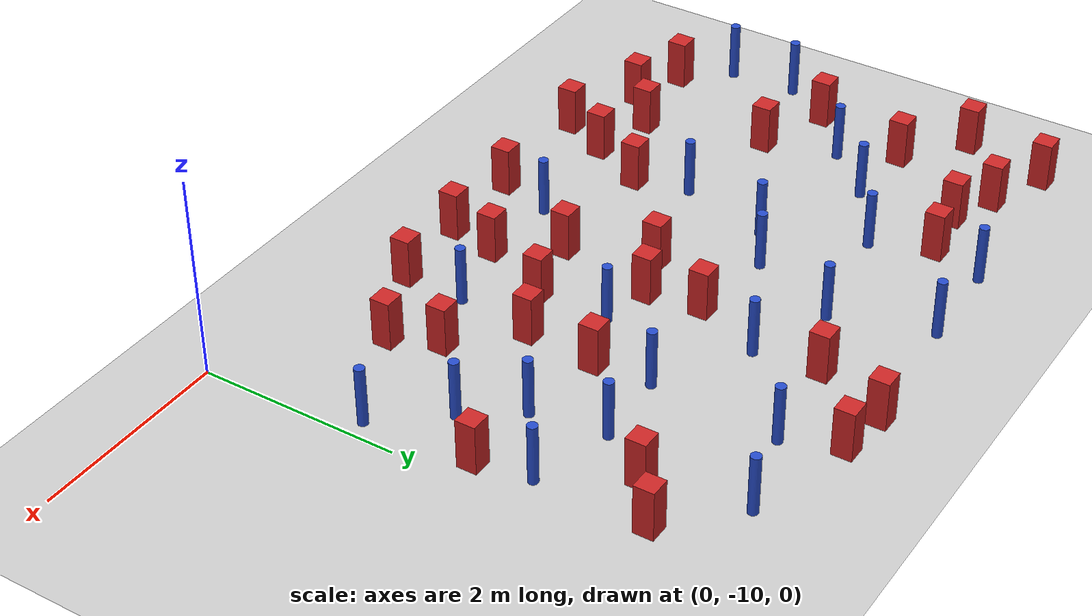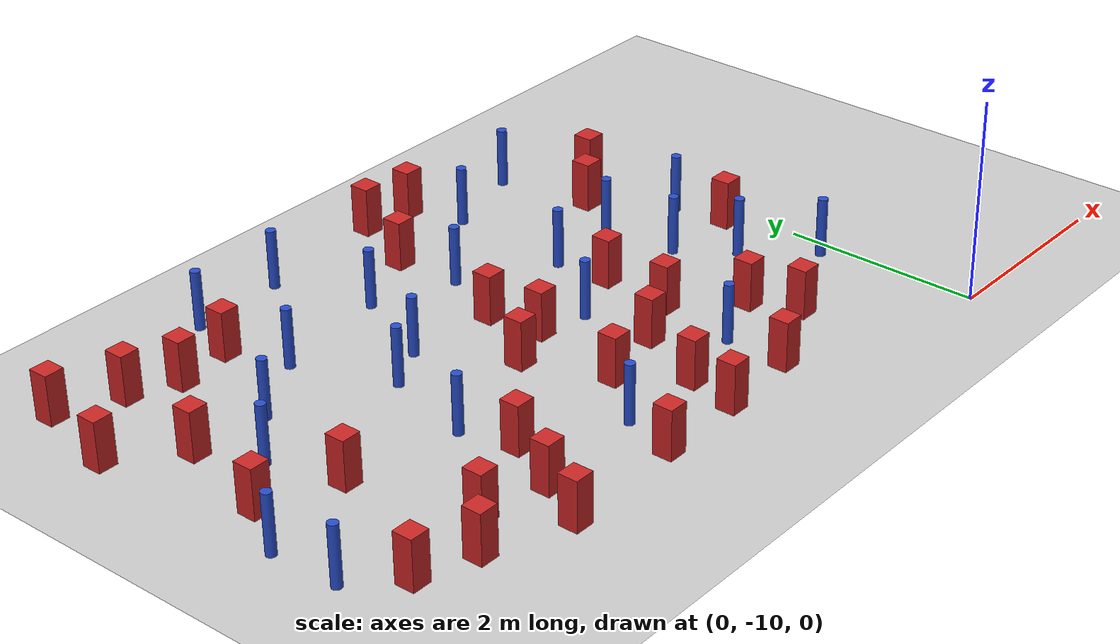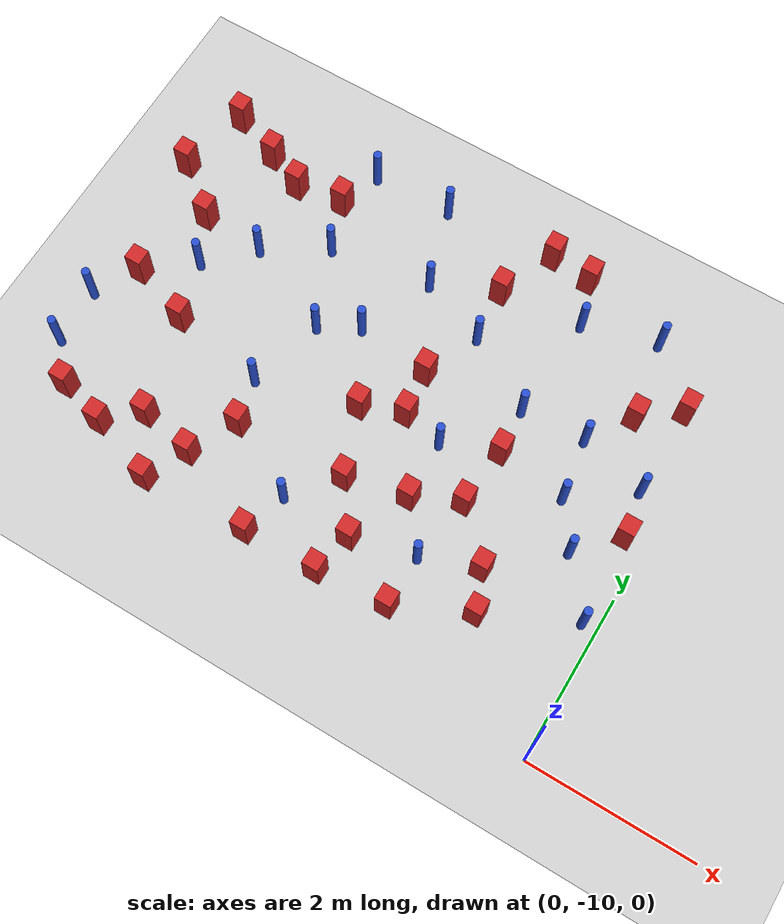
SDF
<sdf version="1.6">
 <world name="default">
  <model name="ground_plane">
   <static>1</static>
   <link name="link">
    <collision name="collision">
     <geometry><plane><normal>0 0 1</normal><size>100 100</size></plane></geometry>
     <surface><friction><ode><mu>100</mu><mu2>50</mu2></ode></friction></surface>
    </collision>
    <visual name="visual">
     <cast_shadows>0</cast_shadows>
     <geometry><plane><normal>0 0 1</normal><size>100 100</size></plane></geometry>
     <material>
      <ambient>1.0 1.0 1.0 1.0</ambient>
      <diffuse>0.8 0.8 0.8 1.0</diffuse>
      <specular>0.01 0.01 0.01 1.000000</specular>
     </material>
    </visual>
   </link>
  </model>
  <model name="pole_obstacle0">
   <static>true</static>
   <pose>-3.90421917436 -4.82802902542 2.88873142074e-08 -9.90536689859e-09 4.60219948989e-07 -1.20965994961e-07</pose>
   <link name="link">
    <pose>0 0 0.3 0 -0 0</pose>
    <inertial>
     <mass>1</mass>
     <inertia><ixx>0.145833</ixx><ixy>0</ixy><ixz>0</ixz><iyy>0.145833</iyy><iyz>0</iyz><izz>0.125</izz></inertia>
    </inertial>
    <collision name="collision">
     <geometry><cylinder><radius>0.05</radius><length>.6</length></cylinder></geometry>
    </collision>
    <visual name="visual">
     <geometry><cylinder><radius>0.05</radius><length>.6</length></cylinder></geometry>
     <material>
      <script><name>Gazebo/Blue</name><uri>file://media/materials/scripts/gazebo.material</uri></script>
     </material>
    </visual>
   </link>
  </model>
  <model name="pole_obstacle4">
   <static>true</static>
   <pose>-4.8280388207 -5.97307406828 2.88873142074e-08 -9.90536690842e-09 4.60219948965e-07 -1.20965994976e-07</pose>
   <link name="link">
    <pose>0 0 0.3 0 -0 0</pose>
    <inertial>
     <mass>1</mass>
     <inertia><ixx>0.145833</ixx><ixy>0</ixy><ixz>0</ixz><iyy>0.145833</iyy><iyz>0</iyz><izz>0.125</izz></inertia>
    </inertial>
    <collision name="collision">
     <geometry><cylinder><radius>0.05</radius><length>.6</length></cylinder></geometry>
    </collision>
    <visual name="visual">
     <geometry><cylinder><radius>0.05</radius><length>.6</length></cylinder></geometry>
     <material>
      <script><name>Gazebo/Blue</name><uri>file://media/materials/scripts/gazebo.material</uri></script>
     </material>
    </visual>
   </link>
  </model>
  <model name="pole_obstacle5">
   <static>true</static>
   <pose>-1.84646677378 -5.33789048613 2.88873142074e-08 -9.90536689852e-09 4.60219948989e-07 -1.2096599496e-07</pose>
   <link name="link">
    <pose>0 0 0.3 0 -0 0</pose>
    <inertial>
     <mass>1</mass>
     <inertia><ixx>0.145833</ixx><ixy>0</ixy><ixz>0</ixz><iyy>0.145833</iyy><iyz>0</iyz><izz>0.125</izz></inertia>
    </inertial>
    <collision name="collision">
     <geometry><cylinder><radius>0.05</radius><length>.6</length></cylinder></geometry>
    </collision>
    <visual name="visual">
     <geometry><cylinder><radius>0.05</radius><length>.6</length></cylinder></geometry>
     <material>
      <script><name>Gazebo/Blue</name><uri>file://media/materials/scripts/gazebo.material</uri></script>
     </material>
    </visual>
   </link>
  </model>
  <model name="square_post_obstacle2">
   <static>true</static>
   <pose>-0.332540221934 -5.68965694797 8.22691968438e-08 7.2212513382e-06 -7.54495500217e-07 2.29674213826e-05</pose>
   <link name="link">
    <pose>0 0 0.25 0 -0 0</pose>
    <inertial>
     <mass>100</mass>
     <inertia>
      <ixx>0.166667</ixx>
      <ixy>0</ixy>
      <ixz>0</ixz>
      <iyy>0.166667</iyy>
      <iyz>0</iyz>
      <izz>0.166667</izz>
     </inertia>
    </inertial>
    <collision name="collision"><geometry><box><size>.2 .2 .5</size></box></geometry></collision>
    <visual name="visual">
     <geometry><box><size>.2 .2 .5</size></box></geometry>
     <material>
      <script><name>Gazebo/Red</name><uri>file://media/materials/scripts/gazebo.material</uri></script>
     </material>
    </visual>
   </link>
  </model>
  <model name="pole_obstacle7">
   <static>true</static>
   <pose>-3.65876709347 -8.87386158231 2.88873142074e-08 -9.90536692318e-09 4.6021994893e-07 -1.20965994988e-07</pose>
   <link name="link">
    <pose>0 0 0.3 0 -0 0</pose>
    <inertial>
     <mass>1</mass>
     <inertia><ixx>0.145833</ixx><ixy>0</ixy><ixz>0</ixz><iyy>0.145833</iyy><iyz>0</iyz><izz>0.125</izz></inertia>
    </inertial>
    <collision name="collision">
     <geometry><cylinder><radius>0.05</radius><length>.6</length></cylinder></geometry>
    </collision>
    <visual name="visual">
     <geometry><cylinder><radius>0.05</radius><length>.6</length></cylinder></geometry>
     <material>
      <script><name>Gazebo/Blue</name><uri>file://media/materials/scripts/gazebo.material</uri></script>
     </material>
    </visual>
   </link>
  </model>
  <model name="square_post_obstacle5">
   <static>true</static>
   <pose>-5.83656839227 -7.64539995667 8.22691968438e-08 7.2212513382e-06 -7.54495500217e-07 2.29674213826e-05</pose>
   <link name="link">
    <pose>0 0 0.25 0 -0 0</pose>
    <inertial>
     <mass>100</mass>
     <inertia>
      <ixx>0.166667</ixx>
      <ixy>0</ixy>
      <ixz>0</ixz>
      <iyy>0.166667</iyy>
      <iyz>0</iyz>
      <izz>0.166667</izz>
     </inertia>
    </inertial>
    <collision name="collision"><geometry><box><size>.2 .2 .5</size></box></geometry></collision>
    <visual name="visual">
     <geometry><box><size>.2 .2 .5</size></box></geometry>
     <material>
      <script><name>Gazebo/Red</name><uri>file://media/materials/scripts/gazebo.material</uri></script>
     </material>
    </visual>
   </link>
  </model>
  <model name="pole_obstacle14">
   <static>true</static>
   <pose>-2.51315668525 -7.44446797202 2.88873142074e-08 -9.90536689859e-09 4.60219948989e-07 -1.20965994961e-07</pose>
   <link name="link">
    <pose>0 0 0.3 0 -0 0</pose>
    <inertial>
     <mass>1</mass>
     <inertia><ixx>0.145833</ixx><ixy>0</ixy><ixz>0</ixz><iyy>0.145833</iyy><iyz>0</iyz><izz>0.125</izz></inertia>
    </inertial>
    <collision name="collision">
     <geometry><cylinder><radius>0.05</radius><length>.6</length></cylinder></geometry>
    </collision>
    <visual name="visual">
     <geometry><cylinder><radius>0.05</radius><length>.6</length></cylinder></geometry>
     <material>
      <script><name>Gazebo/Blue</name><uri>file://media/materials/scripts/gazebo.material</uri></script>
     </material>
    </visual>
   </link>
  </model>
  <model name="pole_obstacle18">
   <static>true</static>
   <pose>-1.91676649097 -6.62138611373 2.88873142074e-08 -9.90536689852e-09 4.60219948989e-07 -1.2096599496e-07</pose>
   <link name="link">
    <pose>0 0 0.3 0 -0 0</pose>
    <inertial>
     <mass>1</mass>
     <inertia><ixx>0.145833</ixx><ixy>0</ixy><ixz>0</ixz><iyy>0.145833</iyy><iyz>0</iyz><izz>0.125</izz></inertia>
    </inertial>
    <collision name="collision">
     <geometry><cylinder><radius>0.05</radius><length>.6</length></cylinder></geometry>
    </collision>
    <visual name="visual">
     <geometry><cylinder><radius>0.05</radius><length>.6</length></cylinder></geometry>
     <material>
      <script><name>Gazebo/Blue</name><uri>file://media/materials/scripts/gazebo.material</uri></script>
     </material>
    </visual>
   </link>
  </model>
  <model name="square_post_obstacle17">
   <static>true</static>
   <pose>-3.20637738972 -8.33634282894 8.22691968438e-08 7.22125133819e-06 -7.54495500217e-07 2.29674213826e-05</pose>
   <link name="link">
    <pose>0 0 0.25 0 -0 0</pose>
    <inertial>
     <mass>100</mass>
     <inertia>
      <ixx>0.166667</ixx>
      <ixy>0</ixy>
      <ixz>0</ixz>
      <iyy>0.166667</iyy>
      <iyz>0</iyz>
      <izz>0.166667</izz>
     </inertia>
    </inertial>
    <collision name="collision"><geometry><box><size>.2 .2 .5</size></box></geometry></collision>
    <visual name="visual">
     <geometry><box><size>.2 .2 .5</size></box></geometry>
     <material>
      <script><name>Gazebo/Red</name><uri>file://media/materials/scripts/gazebo.material</uri></script>
     </material>
    </visual>
   </link>
  </model>
  <model name="pole_obstacle30">
   <static>true</static>
   <pose>-2.7883637554 -6.09784104883 2.88873142074e-08 -9.90536689859e-09 4.60219948989e-07 -1.20965994961e-07</pose>
   <link name="link">
    <pose>0 0 0.3 0 -0 0</pose>
    <inertial>
     <mass>1</mass>
     <inertia><ixx>0.145833</ixx><ixy>0</ixy><ixz>0</ixz><iyy>0.145833</iyy><iyz>0</iyz><izz>0.125</izz></inertia>
    </inertial>
    <collision name="collision">
     <geometry><cylinder><radius>0.05</radius><length>.6</length></cylinder></geometry>
    </collision>
    <visual name="visual">
     <geometry><cylinder><radius>0.05</radius><length>.6</length></cylinder></geometry>
     <material>
      <script><name>Gazebo/Blue</name><uri>file://media/materials/scripts/gazebo.material</uri></script>
     </material>
    </visual>
   </link>
  </model>
  <model name="square_post_obstacle22">
   <static>true</static>
   <pose>-4.55727015643 -8.39629120217 8.22691968438e-08 7.22125133819e-06 -7.54495500217e-07 2.29674213826e-05</pose>
   <link name="link">
    <pose>0 0 0.25 0 -0 0</pose>
    <inertial>
     <mass>100</mass>
     <inertia>
      <ixx>0.166667</ixx>
      <ixy>0</ixy>
      <ixz>0</ixz>
      <iyy>0.166667</iyy>
      <iyz>0</iyz>
      <izz>0.166667</izz>
     </inertia>
    </inertial>
    <collision name="collision"><geometry><box><size>.2 .2 .5</size></box></geometry></collision>
    <visual name="visual">
     <geometry><box><size>.2 .2 .5</size></box></geometry>
     <material>
      <script><name>Gazebo/Red</name><uri>file://media/materials/scripts/gazebo.material</uri></script>
     </material>
    </visual>
   </link>
  </model>
  <model name="square_post_obstacle34">
   <static>true</static>
   <pose>-1.87673063822 -7.18203720251 8.22691968438e-08 7.2212513382e-06 -7.54495500217e-07 2.29674213826e-05</pose>
   <link name="link">
    <pose>0 0 0.25 0 -0 0</pose>
    <inertial>
     <mass>100</mass>
     <inertia>
      <ixx>0.166667</ixx>
      <ixy>0</ixy>
      <ixz>0</ixz>
      <iyy>0.166667</iyy>
      <iyz>0</iyz>
      <izz>0.166667</izz>
     </inertia>
    </inertial>
    <collision name="collision"><geometry><box><size>.2 .2 .5</size></box></geometry></collision>
    <visual name="visual">
     <geometry><box><size>.2 .2 .5</size></box></geometry>
     <material>
      <script><name>Gazebo/Red</name><uri>file://media/materials/scripts/gazebo.material</uri></script>
     </material>
    </visual>
   </link>
  </model>
  <model name="square_post_obstacle35">
   <static>true</static>
   <pose>-0.792334989433 -6.04353622292 8.22691968438e-08 7.2212513382e-06 -7.54495500217e-07 2.29674213826e-05</pose>
   <link name="link">
    <pose>0 0 0.25 0 -0 0</pose>
    <inertial>
     <mass>100</mass>
     <inertia>
      <ixx>0.166667</ixx>
      <ixy>0</ixy>
      <ixz>0</ixz>
      <iyy>0.166667</iyy>
      <iyz>0</iyz>
      <izz>0.166667</izz>
     </inertia>
    </inertial>
    <collision name="collision"><geometry><box><size>.2 .2 .5</size></box></geometry></collision>
    <visual name="visual">
     <geometry><box><size>.2 .2 .5</size></box></geometry>
     <material>
      <script><name>Gazebo/Red</name><uri>file://media/materials/scripts/gazebo.material</uri></script>
     </material>
    </visual>
   </link>
  </model>
  <model name="pole_obstacle50">
   <static>true</static>
   <pose>-3.60276988487 -5.78683461922 2.88873142074e-08 -9.90536692062e-09 4.60219948937e-07 -1.20965994985e-07</pose>
   <link name="link">
    <pose>0 0 0.3 0 -0 0</pose>
    <inertial>
     <mass>1</mass>
     <inertia><ixx>0.145833</ixx><ixy>0</ixy><ixz>0</ixz><iyy>0.145833</iyy><iyz>0</iyz><izz>0.125</izz></inertia>
    </inertial>
    <collision name="collision">
     <geometry><cylinder><radius>0.05</radius><length>.6</length></cylinder></geometry>
    </collision>
    <visual name="visual">
     <geometry><cylinder><radius>0.05</radius><length>.6</length></cylinder></geometry>
     <material>
      <script><name>Gazebo/Blue</name><uri>file://media/materials/scripts/gazebo.material</uri></script>
     </material>
    </visual>
   </link>
  </model>
  <model name="pole_obstacle54">
   <static>true</static>
   <pose>-5.55071646364 -6.42137167709 2.88873142074e-08 -9.90536690842e-09 4.60219948965e-07 -1.20965994976e-07</pose>
   <link name="link">
    <pose>0 0 0.3 0 -0 0</pose>
    <inertial>
     <mass>1</mass>
     <inertia><ixx>0.145833</ixx><ixy>0</ixy><ixz>0</ixz><iyy>0.145833</iyy><iyz>0</iyz><izz>0.125</izz></inertia>
    </inertial>
    <collision name="collision">
     <geometry><cylinder><radius>0.05</radius><length>.6</length></cylinder></geometry>
    </collision>
    <visual name="visual">
     <geometry><cylinder><radius>0.05</radius><length>.6</length></cylinder></geometry>
     <material>
      <script><name>Gazebo/Blue</name><uri>file://media/materials/scripts/gazebo.material</uri></script>
     </material>
    </visual>
   </link>
  </model>
  <model name="pole_obstacle56">
   <static>true</static>
   <pose>-0.325898342578 -6.796367709 2.88873142074e-08 -9.90536689683e-09 4.60219948993e-07 -1.20965994957e-07</pose>
   <link name="link">
    <pose>0 0 0.3 0 -0 0</pose>
    <inertial>
     <mass>1</mass>
     <inertia><ixx>0.145833</ixx><ixy>0</ixy><ixz>0</ixz><iyy>0.145833</iyy><iyz>0</iyz><izz>0.125</izz></inertia>
    </inertial>
    <collision name="collision">
     <geometry><cylinder><radius>0.05</radius><length>.6</length></cylinder></geometry>
    </collision>
    <visual name="visual">
     <geometry><cylinder><radius>0.05</radius><length>.6</length></cylinder></geometry>
     <material>
      <script><name>Gazebo/Blue</name><uri>file://media/materials/scripts/gazebo.material</uri></script>
     </material>
    </visual>
   </link>
  </model>
  <model name="pole_obstacle66">
   <static>true</static>
   <pose>-3.98461921909 -6.67807922393 2.88873142074e-08 -9.90536689401e-09 4.60219948999e-07 -1.20965994955e-07</pose>
   <link name="link">
    <pose>0 0 0.3 0 -0 0</pose>
    <inertial>
     <mass>1</mass>
     <inertia><ixx>0.145833</ixx><ixy>0</ixy><ixz>0</ixz><iyy>0.145833</iyy><iyz>0</iyz><izz>0.125</izz></inertia>
    </inertial>
    <collision name="collision">
     <geometry><cylinder><radius>0.05</radius><length>.6</length></cylinder></geometry>
    </collision>
    <visual name="visual">
     <geometry><cylinder><radius>0.05</radius><length>.6</length></cylinder></geometry>
     <material>
      <script><name>Gazebo/Blue</name><uri>file://media/materials/scripts/gazebo.material</uri></script>
     </material>
    </visual>
   </link>
  </model>
  <model name="square_post_obstacle50">
   <static>true</static>
   <pose>-5.62472955875 -5.46510354735 8.22691968438e-08 7.2212513382e-06 -7.54495500217e-07 2.29674213826e-05</pose>
   <link name="link">
    <pose>0 0 0.25 0 -0 0</pose>
    <inertial>
     <mass>100</mass>
     <inertia>
      <ixx>0.166667</ixx>
      <ixy>0</ixy>
      <ixz>0</ixz>
      <iyy>0.166667</iyy>
      <iyz>0</iyz>
      <izz>0.166667</izz>
     </inertia>
    </inertial>
    <collision name="collision"><geometry><box><size>.2 .2 .5</size></box></geometry></collision>
    <visual name="visual">
     <geometry><box><size>.2 .2 .5</size></box></geometry>
     <material>
      <script><name>Gazebo/Red</name><uri>file://media/materials/scripts/gazebo.material</uri></script>
     </material>
    </visual>
   </link>
  </model>
  <model name="square_post_obstacle53">
   <static>true</static>
   <pose>-2.48090649213 -8.16580246356 8.22691968438e-08 7.22125133819e-06 -7.54495500217e-07 2.29674213826e-05</pose>
   <link name="link">
    <pose>0 0 0.25 0 -0 0</pose>
    <inertial>
     <mass>100</mass>
     <inertia>
      <ixx>0.166667</ixx>
      <ixy>0</ixy>
      <ixz>0</ixz>
      <iyy>0.166667</iyy>
      <iyz>0</iyz>
      <izz>0.166667</izz>
     </inertia>
    </inertial>
    <collision name="collision"><geometry><box><size>.2 .2 .5</size></box></geometry></collision>
    <visual name="visual">
     <geometry><box><size>.2 .2 .5</size></box></geometry>
     <material>
      <script><name>Gazebo/Red</name><uri>file://media/materials/scripts/gazebo.material</uri></script>
     </material>
    </visual>
   </link>
  </model>
  <model name="square_post_obstacle55">
   <static>true</static>
   <pose>-3.8133189962 -9.41762351993 8.22691968438e-08 7.22125133819e-06 -7.54495500217e-07 2.29674213826e-05</pose>
   <link name="link">
    <pose>0 0 0.25 0 -0 0</pose>
    <inertial>
     <mass>100</mass>
     <inertia>
      <ixx>0.166667</ixx>
      <ixy>0</ixy>
      <ixz>0</ixz>
      <iyy>0.166667</iyy>
      <iyz>0</iyz>
      <izz>0.166667</izz>
     </inertia>
    </inertial>
    <collision name="collision"><geometry><box><size>.2 .2 .5</size></box></geometry></collision>
    <visual name="visual">
     <geometry><box><size>.2 .2 .5</size></box></geometry>
     <material>
      <script><name>Gazebo/Red</name><uri>file://media/materials/scripts/gazebo.material</uri></script>
     </material>
    </visual>
   </link>
  </model>
  <model name="pole_obstacle69">
   <static>true</static>
   <pose>-0.667209124763 -7.81376648227 2.88873142074e-08 -9.90536689661e-09 4.60219948993e-07 -1.20965994957e-07</pose>
   <link name="link">
    <pose>0 0 0.3 0 -0 0</pose>
    <inertial>
     <mass>1</mass>
     <inertia><ixx>0.145833</ixx><ixy>0</ixy><ixz>0</ixz><iyy>0.145833</iyy><iyz>0</iyz><izz>0.125</izz></inertia>
    </inertial>
    <collision name="collision">
     <geometry><cylinder><radius>0.05</radius><length>.6</length></cylinder></geometry>
    </collision>
    <visual name="visual">
     <geometry><cylinder><radius>0.05</radius><length>.6</length></cylinder></geometry>
     <material>
      <script><name>Gazebo/Blue</name><uri>file://media/materials/scripts/gazebo.material</uri></script>
     </material>
    </visual>
   </link>
  </model>
  <model name="square_post_obstacle64">
   <static>true</static>
   <pose>-2.91439421249 -9.40062180157 8.22691968438e-08 7.22125133819e-06 -7.54495500217e-07 2.29674213826e-05</pose>
   <link name="link">
    <pose>0 0 0.25 0 -0 0</pose>
    <inertial>
     <mass>100</mass>
     <inertia>
      <ixx>0.166667</ixx>
      <ixy>0</ixy>
      <ixz>0</ixz>
      <iyy>0.166667</iyy>
      <iyz>0</iyz>
      <izz>0.166667</izz>
     </inertia>
    </inertial>
    <collision name="collision"><geometry><box><size>.2 .2 .5</size></box></geometry></collision>
    <visual name="visual">
     <geometry><box><size>.2 .2 .5</size></box></geometry>
     <material>
      <script><name>Gazebo/Red</name><uri>file://media/materials/scripts/gazebo.material</uri></script>
     </material>
    </visual>
   </link>
  </model>
  <model name="square_post_obstacle69">
   <static>true</static>
   <pose>-2.80659340157 -8.89364009597 8.22691968438e-08 7.22125133819e-06 -7.54495500217e-07 2.29674213826e-05</pose>
   <link name="link">
    <pose>0 0 0.25 0 -0 0</pose>
    <inertial>
     <mass>100</mass>
     <inertia>
      <ixx>0.166667</ixx>
      <ixy>0</ixy>
      <ixz>0</ixz>
      <iyy>0.166667</iyy>
      <iyz>0</iyz>
      <izz>0.166667</izz>
     </inertia>
    </inertial>
    <collision name="collision"><geometry><box><size>.2 .2 .5</size></box></geometry></collision>
    <visual name="visual">
     <geometry><box><size>.2 .2 .5</size></box></geometry>
     <material>
      <script><name>Gazebo/Red</name><uri>file://media/materials/scripts/gazebo.material</uri></script>
     </material>
    </visual>
   </link>
  </model>
  <model name="pole_obstacle92">
   <static>true</static>
   <pose>-4.6941851436 -7.85471220374 2.88873142074e-08 -9.90536690842e-09 4.60219948965e-07 -1.20965994976e-07</pose>
   <link name="link">
    <pose>0 0 0.3 0 -0 0</pose>
    <inertial>
     <mass>1</mass>
     <inertia><ixx>0.145833</ixx><ixy>0</ixy><ixz>0</ixz><iyy>0.145833</iyy><iyz>0</iyz><izz>0.125</izz></inertia>
    </inertial>
    <collision name="collision">
     <geometry><cylinder><radius>0.05</radius><length>.6</length></cylinder></geometry>
    </collision>
    <visual name="visual">
     <geometry><cylinder><radius>0.05</radius><length>.6</length></cylinder></geometry>
     <material>
      <script><name>Gazebo/Blue</name><uri>file://media/materials/scripts/gazebo.material</uri></script>
     </material>
    </visual>
   </link>
  </model>
  <model name="square_post_obstacle90">
   <static>true</static>
   <pose>-6.91313791909 -5.87729744551 8.22691968438e-08 7.22125133819e-06 -7.54495500217e-07 2.29674213826e-05</pose>
   <link name="link">
    <pose>0 0 0.25 0 -0 0</pose>
    <inertial>
     <mass>100</mass>
     <inertia>
      <ixx>0.166667</ixx>
      <ixy>0</ixy>
      <ixz>0</ixz>
      <iyy>0.166667</iyy>
      <iyz>0</iyz>
      <izz>0.166667</izz>
     </inertia>
    </inertial>
    <collision name="collision"><geometry><box><size>.2 .2 .5</size></box></geometry></collision>
    <visual name="visual">
     <geometry><box><size>.2 .2 .5</size></box></geometry>
     <material>
      <script><name>Gazebo/Red</name><uri>file://media/materials/scripts/gazebo.material</uri></script>
     </material>
    </visual>
   </link>
  </model>
  <model name="square_post_obstacle99">
   <static>true</static>
   <pose>-6.69809524459 -5.01233753538 8.22691968438e-08 7.2212513382e-06 -7.54495500217e-07 2.29674213826e-05</pose>
   <link name="link">
    <pose>0 0 0.25 0 -0 0</pose>
    <inertial>
     <mass>100</mass>
     <inertia>
      <ixx>0.166667</ixx>
      <ixy>0</ixy>
      <ixz>0</ixz>
      <iyy>0.166667</iyy>
      <iyz>0</iyz>
      <izz>0.166667</izz>
     </inertia>
    </inertial>
    <collision name="collision"><geometry><box><size>.2 .2 .5</size></box></geometry></collision>
    <visual name="visual">
     <geometry><box><size>.2 .2 .5</size></box></geometry>
     <material>
      <script><name>Gazebo/Red</name><uri>file://media/materials/scripts/gazebo.material</uri></script>
     </material>
    </visual>
   </link>
  </model>
  <model name="pole_obstacle106">
   <static>true</static>
   <pose>-0.174431816251 -8.43111553035 2.88873142074e-08 -9.90536690775e-09 4.60219948967e-07 -1.20965994977e-07</pose>
   <link name="link">
    <pose>0 0 0.3 0 -0 0</pose>
    <inertial>
     <mass>1</mass>
     <inertia><ixx>0.145833</ixx><ixy>0</ixy><ixz>0</ixz><iyy>0.145833</iyy><iyz>0</iyz><izz>0.125</izz></inertia>
    </inertial>
    <collision name="collision">
     <geometry><cylinder><radius>0.05</radius><length>.6</length></cylinder></geometry>
    </collision>
    <visual name="visual">
     <geometry><cylinder><radius>0.05</radius><length>.6</length></cylinder></geometry>
     <material>
      <script><name>Gazebo/Blue</name><uri>file://media/materials/scripts/gazebo.material</uri></script>
     </material>
    </visual>
   </link>
  </model>
  <model name="square_post_obstacle104">
   <static>true</static>
   <pose>-2.05821308737 -9.33654164684 8.22691968438e-08 7.22125133819e-06 -7.54495500217e-07 2.29674213826e-05</pose>
   <link name="link">
    <pose>0 0 0.25 0 -0 0</pose>
    <inertial>
     <mass>100</mass>
     <inertia>
      <ixx>0.166667</ixx>
      <ixy>0</ixy>
      <ixz>0</ixz>
      <iyy>0.166667</iyy>
      <iyz>0</iyz>
      <izz>0.166667</izz>
     </inertia>
    </inertial>
    <collision name="collision"><geometry><box><size>.2 .2 .5</size></box></geometry></collision>
    <visual name="visual">
     <geometry><box><size>.2 .2 .5</size></box></geometry>
     <material>
      <script><name>Gazebo/Red</name><uri>file://media/materials/scripts/gazebo.material</uri></script>
     </material>
    </visual>
   </link>
  </model>
  <model name="square_post_obstacle105">
   <static>true</static>
   <pose>-1.93006383528 -7.90693670418 8.22691968438e-08 7.2212513382e-06 -7.54495500217e-07 2.29674213826e-05</pose>
   <link name="link">
    <pose>0 0 0.25 0 -0 0</pose>
    <inertial>
     <mass>100</mass>
     <inertia>
      <ixx>0.166667</ixx>
      <ixy>0</ixy>
      <ixz>0</ixz>
      <iyy>0.166667</iyy>
      <iyz>0</iyz>
      <izz>0.166667</izz>
     </inertia>
    </inertial>
    <collision name="collision"><geometry><box><size>.2 .2 .5</size></box></geometry></collision>
    <visual name="visual">
     <geometry><box><size>.2 .2 .5</size></box></geometry>
     <material>
      <script><name>Gazebo/Red</name><uri>file://media/materials/scripts/gazebo.material</uri></script>
     </material>
    </visual>
   </link>
  </model>
  <model name="square_post_obstacle114">
   <static>true</static>
   <pose>-6.32140390526 -6.36880883017 8.22691968438e-08 7.22125133819e-06 -7.54495500217e-07 2.29674213826e-05</pose>
   <link name="link">
    <pose>0 0 0.25 0 -0 0</pose>
    <inertial>
     <mass>100</mass>
     <inertia>
      <ixx>0.166667</ixx>
      <ixy>0</ixy>
      <ixz>0</ixz>
      <iyy>0.166667</iyy>
      <iyz>0</iyz>
      <izz>0.166667</izz>
     </inertia>
    </inertial>
    <collision name="collision"><geometry><box><size>.2 .2 .5</size></box></geometry></collision>
    <visual name="visual">
     <geometry><box><size>.2 .2 .5</size></box></geometry>
     <material>
      <script><name>Gazebo/Red</name><uri>file://media/materials/scripts/gazebo.material</uri></script>
     </material>
    </visual>
   </link>
  </model>
  <model name="square_post_obstacle115">
   <static>true</static>
   <pose>-5.09319329007 -9.47063039764 8.22691968438e-08 7.22125133819e-06 -7.54495500217e-07 2.29674213826e-05</pose>
   <link name="link">
    <pose>0 0 0.25 0 -0 0</pose>
    <inertial>
     <mass>100</mass>
     <inertia>
      <ixx>0.166667</ixx>
      <ixy>0</ixy>
      <ixz>0</ixz>
      <iyy>0.166667</iyy>
      <iyz>0</iyz>
      <izz>0.166667</izz>
     </inertia>
    </inertial>
    <collision name="collision"><geometry><box><size>.2 .2 .5</size></box></geometry></collision>
    <visual name="visual">
     <geometry><box><size>.2 .2 .5</size></box></geometry>
     <material>
      <script><name>Gazebo/Red</name><uri>file://media/materials/scripts/gazebo.material</uri></script>
     </material>
    </visual>
   </link>
  </model>
  <model name="square_post_obstacle119">
   <static>true</static>
   <pose>-2.54703920062 -4.7254552102 8.22691968438e-08 7.2212513382e-06 -7.54495500217e-07 2.29674213826e-05</pose>
   <link name="link">
    <pose>0 0 0.25 0 -0 0</pose>
    <inertial>
     <mass>100</mass>
     <inertia>
      <ixx>0.166667</ixx>
      <ixy>0</ixy>
      <ixz>0</ixz>
      <iyy>0.166667</iyy>
      <iyz>0</iyz>
      <izz>0.166667</izz>
     </inertia>
    </inertial>
    <collision name="collision"><geometry><box><size>.2 .2 .5</size></box></geometry></collision>
    <visual name="visual">
     <geometry><box><size>.2 .2 .5</size></box></geometry>
     <material>
      <script><name>Gazebo/Red</name><uri>file://media/materials/scripts/gazebo.material</uri></script>
     </material>
    </visual>
   </link>
  </model>
  <model name="pole_obstacle127">
   <static>true</static>
   <pose>-4.44597975027 -6.92927412728 2.88873142074e-08 -9.90536690842e-09 4.60219948965e-07 -1.20965994976e-07</pose>
   <link name="link">
    <pose>0 0 0.3 0 -0 0</pose>
    <inertial>
     <mass>1</mass>
     <inertia><ixx>0.145833</ixx><ixy>0</ixy><ixz>0</ixz><iyy>0.145833</iyy><iyz>0</iyz><izz>0.125</izz></inertia>
    </inertial>
    <collision name="collision">
     <geometry><cylinder><radius>0.05</radius><length>.6</length></cylinder></geometry>
    </collision>
    <visual name="visual">
     <geometry><cylinder><radius>0.05</radius><length>.6</length></cylinder></geometry>
     <material>
      <script><name>Gazebo/Blue</name><uri>file://media/materials/scripts/gazebo.material</uri></script>
     </material>
    </visual>
   </link>
  </model>
  <model name="square_post_obstacle126">
   <static>true</static>
   <pose>-6.09079599209 -5.26411831491 8.22691968438e-08 7.22125133819e-06 -7.54495500217e-07 2.29674213826e-05</pose>
   <link name="link">
    <pose>0 0 0.25 0 -0 0</pose>
    <inertial>
     <mass>100</mass>
     <inertia>
      <ixx>0.166667</ixx>
      <ixy>0</ixy>
      <ixz>0</ixz>
      <iyy>0.166667</iyy>
      <iyz>0</iyz>
      <izz>0.166667</izz>
     </inertia>
    </inertial>
    <collision name="collision"><geometry><box><size>.2 .2 .5</size></box></geometry></collision>
    <visual name="visual">
     <geometry><box><size>.2 .2 .5</size></box></geometry>
     <material>
      <script><name>Gazebo/Red</name><uri>file://media/materials/scripts/gazebo.material</uri></script>
     </material>
    </visual>
   </link>
  </model>
  <model name="pole_obstacle137">
   <static>true</static>
   <pose>-4.86854911501 -4.85825068989 2.88873142074e-08 -9.90536690842e-09 4.60219948965e-07 -1.20965994976e-07</pose>
   <link name="link">
    <pose>0 0 0.3 0 -0 0</pose>
    <inertial>
     <mass>1</mass>
     <inertia><ixx>0.145833</ixx><ixy>0</ixy><ixz>0</ixz><iyy>0.145833</iyy><iyz>0</iyz><izz>0.125</izz></inertia>
    </inertial>
    <collision name="collision">
     <geometry><cylinder><radius>0.05</radius><length>.6</length></cylinder></geometry>
    </collision>
    <visual name="visual">
     <geometry><cylinder><radius>0.05</radius><length>.6</length></cylinder></geometry>
     <material>
      <script><name>Gazebo/Blue</name><uri>file://media/materials/scripts/gazebo.material</uri></script>
     </material>
    </visual>
   </link>
  </model>
  <model name="pole_obstacle142">
   <static>true</static>
   <pose>-1.13946655507 -6.57450155342 2.88873142074e-08 -9.90536689852e-09 4.60219948989e-07 -1.2096599496e-07</pose>
   <link name="link">
    <pose>0 0 0.3 0 -0 0</pose>
    <inertial>
     <mass>1</mass>
     <inertia><ixx>0.145833</ixx><ixy>0</ixy><ixz>0</ixz><iyy>0.145833</iyy><iyz>0</iyz><izz>0.125</izz></inertia>
    </inertial>
    <collision name="collision">
     <geometry><cylinder><radius>0.05</radius><length>.6</length></cylinder></geometry>
    </collision>
    <visual name="visual">
     <geometry><cylinder><radius>0.05</radius><length>.6</length></cylinder></geometry>
     <material>
      <script><name>Gazebo/Blue</name><uri>file://media/materials/scripts/gazebo.material</uri></script>
     </material>
    </visual>
   </link>
  </model>
  <model name="pole_obstacle149">
   <static>true</static>
   <pose>-6.88315740093 -8.57808453088 2.88873142074e-08 -9.9053668967e-09 4.60219948993e-07 -1.20965994957e-07</pose>
   <link name="link">
    <pose>0 0 0.3 0 -0 0</pose>
    <inertial>
     <mass>1</mass>
     <inertia><ixx>0.145833</ixx><ixy>0</ixy><ixz>0</ixz><iyy>0.145833</iyy><iyz>0</iyz><izz>0.125</izz></inertia>
    </inertial>
    <collision name="collision">
     <geometry><cylinder><radius>0.05</radius><length>.6</length></cylinder></geometry>
    </collision>
    <visual name="visual">
     <geometry><cylinder><radius>0.05</radius><length>.6</length></cylinder></geometry>
     <material>
      <script><name>Gazebo/Blue</name><uri>file://media/materials/scripts/gazebo.material</uri></script>
     </material>
    </visual>
   </link>
  </model>
  <model name="square_post_obstacle155">
   <static>true</static>
   <pose>-2.84707314405 -5.44113861222 8.22691968438e-08 7.2212513382e-06 -7.54495500217e-07 2.29674213826e-05</pose>
   <link name="link">
    <pose>0 0 0.25 0 -0 0</pose>
    <inertial>
     <mass>100</mass>
     <inertia>
      <ixx>0.166667</ixx>
      <ixy>0</ixy>
      <ixz>0</ixz>
      <iyy>0.166667</iyy>
      <iyz>0</iyz>
      <izz>0.166667</izz>
     </inertia>
    </inertial>
    <collision name="collision"><geometry><box><size>.2 .2 .5</size></box></geometry></collision>
    <visual name="visual">
     <geometry><box><size>.2 .2 .5</size></box></geometry>
     <material>
      <script><name>Gazebo/Red</name><uri>file://media/materials/scripts/gazebo.material</uri></script>
     </material>
    </visual>
   </link>
  </model>
  <model name="square_post_obstacle156">
   <static>true</static>
   <pose>-3.50970342403 -7.52217682172 8.22691968438e-08 7.22125133819e-06 -7.54495500217e-07 2.29674213826e-05</pose>
   <link name="link">
    <pose>0 0 0.25 0 -0 0</pose>
    <inertial>
     <mass>100</mass>
     <inertia>
      <ixx>0.166667</ixx>
      <ixy>0</ixy>
      <ixz>0</ixz>
      <iyy>0.166667</iyy>
      <iyz>0</iyz>
      <izz>0.166667</izz>
     </inertia>
    </inertial>
    <collision name="collision"><geometry><box><size>.2 .2 .5</size></box></geometry></collision>
    <visual name="visual">
     <geometry><box><size>.2 .2 .5</size></box></geometry>
     <material>
      <script><name>Gazebo/Red</name><uri>file://media/materials/scripts/gazebo.material</uri></script>
     </material>
    </visual>
   </link>
  </model>
  <model name="square_post_obstacle159">
   <static>true</static>
   <pose>-5.04343059752 -5.38028235078 8.22691968438e-08 7.2212513382e-06 -7.54495500217e-07 2.29674213826e-05</pose>
   <link name="link">
    <pose>0 0 0.25 0 -0 0</pose>
    <inertial>
     <mass>100</mass>
     <inertia>
      <ixx>0.166667</ixx>
      <ixy>0</ixy>
      <ixz>0</ixz>
      <iyy>0.166667</iyy>
      <iyz>0</iyz>
      <izz>0.166667</izz>
     </inertia>
    </inertial>
    <collision name="collision"><geometry><box><size>.2 .2 .5</size></box></geometry></collision>
    <visual name="visual">
     <geometry><box><size>.2 .2 .5</size></box></geometry>
     <material>
      <script><name>Gazebo/Red</name><uri>file://media/materials/scripts/gazebo.material</uri></script>
     </material>
    </visual>
   </link>
  </model>
  <model name="square_post_obstacle160">
   <static>true</static>
   <pose>-0.236415329249 -7.33722044749 8.22691968438e-08 7.2212513382e-06 -7.54495500217e-07 2.29674213826e-05</pose>
   <link name="link">
    <pose>0 0 0.25 0 -0 0</pose>
    <inertial>
     <mass>100</mass>
     <inertia>
      <ixx>0.166667</ixx>
      <ixy>0</ixy>
      <ixz>0</ixz>
      <iyy>0.166667</iyy>
      <iyz>0</iyz>
      <izz>0.166667</izz>
     </inertia>
    </inertial>
    <collision name="collision"><geometry><box><size>.2 .2 .5</size></box></geometry></collision>
    <visual name="visual">
     <geometry><box><size>.2 .2 .5</size></box></geometry>
     <material>
      <script><name>Gazebo/Red</name><uri>file://media/materials/scripts/gazebo.material</uri></script>
     </material>
    </visual>
   </link>
  </model>
  <model name="pole_obstacle167">
   <static>true</static>
   <pose>-6.9077992136 -7.88442641584 2.88873142074e-08 -9.90536690842e-09 4.60219948965e-07 -1.20965994976e-07</pose>
   <link name="link">
    <pose>0 0 0.3 0 -0 0</pose>
    <inertial>
     <mass>1</mass>
     <inertia><ixx>0.145833</ixx><ixy>0</ixy><ixz>0</ixz><iyy>0.145833</iyy><iyz>0</iyz><izz>0.125</izz></inertia>
    </inertial>
    <collision name="collision">
     <geometry><cylinder><radius>0.05</radius><length>.6</length></cylinder></geometry>
    </collision>
    <visual name="visual">
     <geometry><cylinder><radius>0.05</radius><length>.6</length></cylinder></geometry>
     <material>
      <script><name>Gazebo/Blue</name><uri>file://media/materials/scripts/gazebo.material</uri></script>
     </material>
    </visual>
   </link>
  </model>
  <model name="square_post_obstacle165">
   <static>true</static>
   <pose>-3.0812301212 -6.77810157877 8.22691968438e-08 7.22125133819e-06 -7.54495500217e-07 2.29674213826e-05</pose>
   <link name="link">
    <pose>0 0 0.25 0 -0 0</pose>
    <inertial>
     <mass>100</mass>
     <inertia>
      <ixx>0.166667</ixx>
      <ixy>0</ixy>
      <ixz>0</ixz>
      <iyy>0.166667</iyy>
      <iyz>0</iyz>
      <izz>0.166667</izz>
     </inertia>
    </inertial>
    <collision name="collision"><geometry><box><size>.2 .2 .5</size></box></geometry></collision>
    <visual name="visual">
     <geometry><box><size>.2 .2 .5</size></box></geometry>
     <material>
      <script><name>Gazebo/Red</name><uri>file://media/materials/scripts/gazebo.material</uri></script>
     </material>
    </visual>
   </link>
  </model>
  <model name="pole_obstacle169">
   <static>true</static>
   <pose>-2.04721991217 -8.71417729208 2.88873142074e-08 -9.9053669068e-09 4.60219948969e-07 -1.20965994974e-07</pose>
   <link name="link">
    <pose>0 0 0.3 0 -0 0</pose>
    <inertial>
     <mass>1</mass>
     <inertia><ixx>0.145833</ixx><ixy>0</ixy><ixz>0</ixz><iyy>0.145833</iyy><iyz>0</iyz><izz>0.125</izz></inertia>
    </inertial>
    <collision name="collision">
     <geometry><cylinder><radius>0.05</radius><length>.6</length></cylinder></geometry>
    </collision>
    <visual name="visual">
     <geometry><cylinder><radius>0.05</radius><length>.6</length></cylinder></geometry>
     <material>
      <script><name>Gazebo/Blue</name><uri>file://media/materials/scripts/gazebo.material</uri></script>
     </material>
    </visual>
   </link>
  </model>
  <model name="square_post_obstacle168">
   <static>true</static>
   <pose>-5.902277353 -9.18071852028 8.22691968438e-08 7.22125133819e-06 -7.54495500217e-07 2.29674213826e-05</pose>
   <link name="link">
    <pose>0 0 0.25 0 -0 0</pose>
    <inertial>
     <mass>100</mass>
     <inertia>
      <ixx>0.166667</ixx>
      <ixy>0</ixy>
      <ixz>0</ixz>
      <iyy>0.166667</iyy>
      <iyz>0</iyz>
      <izz>0.166667</izz>
     </inertia>
    </inertial>
    <collision name="collision"><geometry><box><size>.2 .2 .5</size></box></geometry></collision>
    <visual name="visual">
     <geometry><box><size>.2 .2 .5</size></box></geometry>
     <material>
      <script><name>Gazebo/Red</name><uri>file://media/materials/scripts/gazebo.material</uri></script>
     </material>
    </visual>
   </link>
  </model>
  <model name="pole_obstacle174">
   <static>true</static>
   <pose>-0.964102841111 -5.08686789376 2.88873142074e-08 -9.90536689644e-09 4.60219948994e-07 -1.20965994957e-07</pose>
   <link name="link">
    <pose>0 0 0.3 0 -0 0</pose>
    <inertial>
     <mass>1</mass>
     <inertia><ixx>0.145833</ixx><ixy>0</ixy><ixz>0</ixz><iyy>0.145833</iyy><iyz>0</iyz><izz>0.125</izz></inertia>
    </inertial>
    <collision name="collision">
     <geometry><cylinder><radius>0.05</radius><length>.6</length></cylinder></geometry>
    </collision>
    <visual name="visual">
     <geometry><cylinder><radius>0.05</radius><length>.6</length></cylinder></geometry>
     <material>
      <script><name>Gazebo/Blue</name><uri>file://media/materials/scripts/gazebo.material</uri></script>
     </material>
    </visual>
   </link>
  </model>
  <model name="square_post_obstacle172">
   <static>true</static>
   <pose>-1.39460616331 -8.46158332431 8.22691968438e-08 7.2212513382e-06 -7.54495500217e-07 2.29674213826e-05</pose>
   <link name="link">
    <pose>0 0 0.25 0 -0 0</pose>
    <inertial>
     <mass>100</mass>
     <inertia>
      <ixx>0.166667</ixx>
      <ixy>0</ixy>
      <ixz>0</ixz>
      <iyy>0.166667</iyy>
      <iyz>0</iyz>
      <izz>0.166667</izz>
     </inertia>
    </inertial>
    <collision name="collision"><geometry><box><size>.2 .2 .5</size></box></geometry></collision>
    <visual name="visual">
     <geometry><box><size>.2 .2 .5</size></box></geometry>
     <material>
      <script><name>Gazebo/Red</name><uri>file://media/materials/scripts/gazebo.material</uri></script>
     </material>
    </visual>
   </link>
  </model>
  <model name="square_post_obstacle173">
   <static>true</static>
   <pose>-6.48204360788 -8.99993631579 8.22691968438e-08 7.22125133819e-06 -7.54495500217e-07 2.29674213826e-05</pose>
   <link name="link">
    <pose>0 0 0.25 0 -0 0</pose>
    <inertial>
     <mass>100</mass>
     <inertia>
      <ixx>0.166667</ixx>
      <ixy>0</ixy>
      <ixz>0</ixz>
      <iyy>0.166667</iyy>
      <iyz>0</iyz>
      <izz>0.166667</izz>
     </inertia>
    </inertial>
    <collision name="collision"><geometry><box><size>.2 .2 .5</size></box></geometry></collision>
    <visual name="visual">
     <geometry><box><size>.2 .2 .5</size></box></geometry>
     <material>
      <script><name>Gazebo/Red</name><uri>file://media/materials/scripts/gazebo.material</uri></script>
     </material>
    </visual>
   </link>
  </model>
  <model name="square_post_obstacle178">
   <static>true</static>
   <pose>-3.00930877289 -7.3296397543 8.22691968438e-08 7.22125133819e-06 -7.54495500217e-07 2.29674213826e-05</pose>
   <link name="link">
    <pose>0 0 0.25 0 -0 0</pose>
    <inertial>
     <mass>100</mass>
     <inertia>
      <ixx>0.166667</ixx>
      <ixy>0</ixy>
      <ixz>0</ixz>
      <iyy>0.166667</iyy>
      <iyz>0</iyz>
      <izz>0.166667</izz>
     </inertia>
    </inertial>
    <collision name="collision"><geometry><box><size>.2 .2 .5</size></box></geometry></collision>
    <visual name="visual">
     <geometry><box><size>.2 .2 .5</size></box></geometry>
     <material>
      <script><name>Gazebo/Red</name><uri>file://media/materials/scripts/gazebo.material</uri></script>
     </material>
    </visual>
   </link>
  </model>
  <model name="square_post_obstacle186">
   <static>true</static>
   <pose>-1.20415742116 -8.92686245772 8.22691968438e-08 7.22125133819e-06 -7.54495500217e-07 2.29674213826e-05</pose>
   <link name="link">
    <pose>0 0 0.25 0 -0 0</pose>
    <inertial>
     <mass>100</mass>
     <inertia>
      <ixx>0.166667</ixx>
      <ixy>0</ixy>
      <ixz>0</ixz>
      <iyy>0.166667</iyy>
      <iyz>0</iyz>
      <izz>0.166667</izz>
     </inertia>
    </inertial>
    <collision name="collision"><geometry><box><size>.2 .2 .5</size></box></geometry></collision>
    <visual name="visual">
     <geometry><box><size>.2 .2 .5</size></box></geometry>
     <material>
      <script><name>Gazebo/Red</name><uri>file://media/materials/scripts/gazebo.material</uri></script>
     </material>
    </visual>
   </link>
  </model>
  <model name="square_post_obstacle188">
   <static>true</static>
   <pose>-6.58368868772 -7.36547512697 8.22691968438e-08 7.22125133819e-06 -7.54495500217e-07 2.29674213826e-05</pose>
   <link name="link">
    <pose>0 0 0.25 0 -0 0</pose>
    <inertial>
     <mass>100</mass>
     <inertia>
      <ixx>0.166667</ixx>
      <ixy>0</ixy>
      <ixz>0</ixz>
      <iyy>0.166667</iyy>
      <iyz>0</iyz>
      <izz>0.166667</izz>
     </inertia>
    </inertial>
    <collision name="collision"><geometry><box><size>.2 .2 .5</size></box></geometry></collision>
    <visual name="visual">
     <geometry><box><size>.2 .2 .5</size></box></geometry>
     <material>
      <script><name>Gazebo/Red</name><uri>file://media/materials/scripts/gazebo.material</uri></script>
     </material>
    </visual>
   </link>
  </model>
  <model name="pole_obstacle193">
   <static>true</static>
   <pose>-1.02351038181 -7.30318938938 2.88873142074e-08 -9.90536689792e-09 4.6021994899e-07 -1.2096599496e-07</pose>
   <link name="link">
    <pose>0 0 0.3 0 -0 0</pose>
    <inertial>
     <mass>1</mass>
     <inertia><ixx>0.145833</ixx><ixy>0</ixy><ixz>0</ixz><iyy>0.145833</iyy><iyz>0</iyz><izz>0.125</izz></inertia>
    </inertial>
    <collision name="collision">
     <geometry><cylinder><radius>0.05</radius><length>.6</length></cylinder></geometry>
    </collision>
    <visual name="visual">
     <geometry><cylinder><radius>0.05</radius><length>.6</length></cylinder></geometry>
     <material>
      <script><name>Gazebo/Blue</name><uri>file://media/materials/scripts/gazebo.material</uri></script>
     </material>
    </visual>
   </link>
  </model>
  <model name="pole_obstacle203">
   <static>true</static>
   <pose>-6.05097020882 -6.92767578309 2.88873142074e-08 -9.90536690842e-09 4.60219948965e-07 -1.20965994976e-07</pose>
   <link name="link">
    <pose>0 0 0.3 0 -0 0</pose>
    <inertial>
     <mass>1</mass>
     <inertia><ixx>0.145833</ixx><ixy>0</ixy><ixz>0</ixz><iyy>0.145833</iyy><iyz>0</iyz><izz>0.125</izz></inertia>
    </inertial>
    <collision name="collision">
     <geometry><cylinder><radius>0.05</radius><length>.6</length></cylinder></geometry>
    </collision>
    <visual name="visual">
     <geometry><cylinder><radius>0.05</radius><length>.6</length></cylinder></geometry>
     <material>
      <script><name>Gazebo/Blue</name><uri>file://media/materials/scripts/gazebo.material</uri></script>
     </material>
    </visual>
   </link>
  </model>
  <model name="square_post_obstacle212">
   <static>true</static>
   <pose>-4.84914996738 -8.97260003534 8.22691968438e-08 7.22125133819e-06 -7.54495500217e-07 2.29674213826e-05</pose>
   <link name="link">
    <pose>0 0 0.25 0 -0 0</pose>
    <inertial>
     <mass>100</mass>
     <inertia>
      <ixx>0.166667</ixx>
      <ixy>0</ixy>
      <ixz>0</ixz>
      <iyy>0.166667</iyy>
      <iyz>0</iyz>
      <izz>0.166667</izz>
     </inertia>
    </inertial>
    <collision name="collision"><geometry><box><size>.2 .2 .5</size></box></geometry></collision>
    <visual name="visual">
     <geometry><box><size>.2 .2 .5</size></box></geometry>
     <material>
      <script><name>Gazebo/Red</name><uri>file://media/materials/scripts/gazebo.material</uri></script>
     </material>
    </visual>
   </link>
  </model>
  <model name="square_post_obstacle213">
   <static>true</static>
   <pose>-5.50441996738 -8.83258003534 8.22691968438e-08 7.22125133819e-06 -7.54495500217e-07 2.29674213826e-05</pose>
   <link name="link">
    <pose>0 0 0.25 0 -0 0</pose>
    <inertial>
     <mass>100</mass>
     <inertia>
      <ixx>0.166667</ixx>
      <ixy>0</ixy>
      <ixz>0</ixz>
      <iyy>0.166667</iyy>
      <iyz>0</iyz>
      <izz>0.166667</izz>
     </inertia>
    </inertial>
    <collision name="collision"><geometry><box><size>.2 .2 .5</size></box></geometry></collision>
    <visual name="visual">
     <geometry><box><size>.2 .2 .5</size></box></geometry>
     <material>
      <script><name>Gazebo/Red</name><uri>file://media/materials/scripts/gazebo.material</uri></script>
     </material>
    </visual>
   </link>
  </model>
  <model name="square_post_obstacle223">
   <static>true</static>
   <pose>-2.03791996738 -4.78856003534 8.22691968438e-08 7.2212513382e-06 -7.54495500217e-07 2.29674213826e-05</pose>
   <link name="link">
    <pose>0 0 0.25 0 -0 0</pose>
    <inertial>
     <mass>100</mass>
     <inertia>
      <ixx>0.166667</ixx>
      <ixy>0</ixy>
      <ixz>0</ixz>
      <iyy>0.166667</iyy>
      <iyz>0</iyz>
      <izz>0.166667</izz>
     </inertia>
    </inertial>
    <collision name="collision"><geometry><box><size>.2 .2 .5</size></box></geometry></collision>
    <visual name="visual">
     <geometry><box><size>.2 .2 .5</size></box></geometry>
     <material>
      <script><name>Gazebo/Red</name><uri>file://media/materials/scripts/gazebo.material</uri></script>
     </material>
    </visual>
   </link>
  </model>
 </world>
</sdf>
